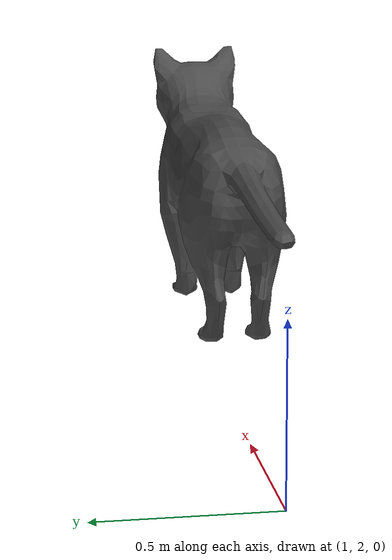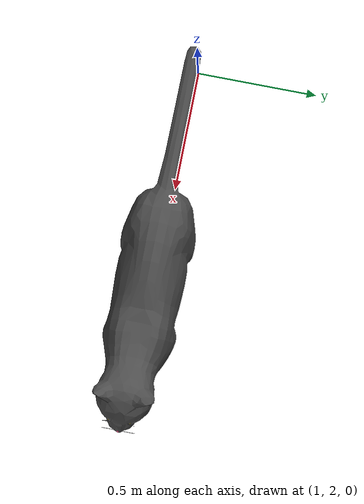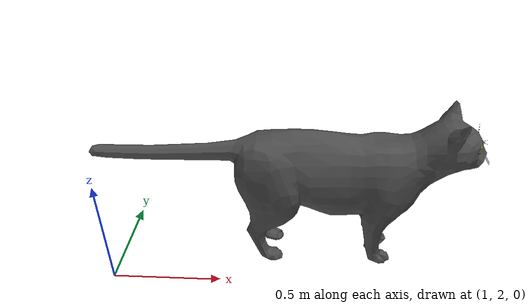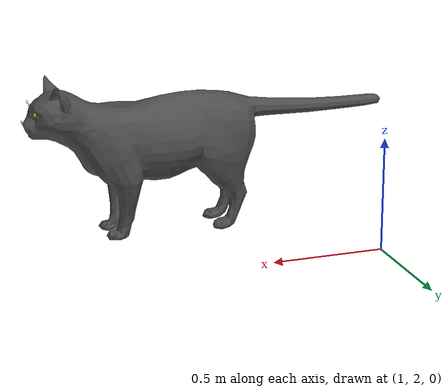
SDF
<sdf version='1.12'>
  <world name='default'>
    <gravity>0 0 -9.800</gravity>
    <magnetic_field>0.000 0.000 -0.000</magnetic_field>
    <atmosphere type='adiabatic'/>
    <physics type='ode'>
      <max_step_size>0.001</max_step_size>
      <real_time_factor>1</real_time_factor>
      <real_time_update_rate>1000</real_time_update_rate>
    </physics>

    <plugin
        filename="gz-sim-physics-system"
        name="gz::sim::systems::Physics">
    </plugin>

    <plugin
        filename="gz-sim-user-commands-system"
        name="gz::sim::systems::UserCommands">
    </plugin>

    <plugin
        filename="gz-sim-scene-broadcaster-system"
        name="gz::sim::systems::SceneBroadcaster">
    </plugin>

    <scene>
      <ambient>0.400 0.400 0.400 1</ambient>
      <background>0.700 0.700 0.700 1</background>
      <shadows>true</shadows>
    </scene>

    <model name="cat">
      <pose>2 2 0 0 0 0</pose>
      <static>false</static>

      <link name="body">
        <pose>0 0 0.2 0 0 0</pose>

        <!-- Main cat body visual -->
        <visual name="visual">
          <geometry>
            <mesh>
              <uri>file:///home/ismail/ros2_ws/src/cat_chaser/meshes/cat.dae</uri>
              <scale>0.2 0.2 0.2</scale>
            </mesh>
          </geometry>
          <pose>0 0 0 1.5708 0 0</pose>
          <material>
            <ambient>0.2 0.2 0.2 1</ambient>    <!-- Lighter gray -->
            <diffuse>0.3 0.3 0.3 1</diffuse>    <!-- Much lighter gray -->
            <specular>0.1 0.1 0.1 1</specular>
          </material>
        </visual>

        <!-- Left Eye -->
        <visual name="left_eye">
          <geometry>
            <sphere>
              <radius>0.015</radius>
            </sphere>
          </geometry>
          <!-- Cat's face is on positive X, eyes should be high up on Z -->
          <pose>0.505 -0.0345 0.564 1.5708 0 0</pose>
          <material>
            <ambient>1.0 0.8 0.0 1</ambient>
            <diffuse>1.0 0.9 0.2 1</diffuse>
            <specular>1.0 1.0 1.0 1</specular>
            <emissive>0.3 0.2 0.0 1</emissive>
          </material>
        </visual>

        <!-- Right Eye -->
        <visual name="right_eye">
          <geometry>
            <sphere>
              <radius>0.015</radius>
            </sphere>
          </geometry>
          <pose>0.505 0.0345 0.564 1.5708 0 0</pose>
          <material>
            <ambient>1.0 0.8 0.0 1</ambient>
            <diffuse>1.0 0.9 0.2 1</diffuse>
            <specular>1.0 1.0 1.0 1</specular>
            <emissive>0.3 0.2 0.0 1</emissive>
          </material>
        </visual>

        <!-- Left Eye Pupil -->
        <visual name="left_pupil">
          <geometry>
            <sphere>
              <radius>0.008</radius>
            </sphere>
          </geometry>
          <pose>0.5133 -0.0345 0.564 1.5708 0 0</pose>
          <material>
            <ambient>0.0 0.0 0.0 1</ambient>
            <diffuse>0.0 0.0 0.0 1</diffuse>
            <specular>0.0 0.0 0.0 1</specular>
          </material>
        </visual>

        <!-- Right Eye Pupil -->
        <visual name="right_pupil">
          <geometry>
            <sphere>
              <radius>0.008</radius>
            </sphere>
          </geometry>
          <pose>0.5133 0.0345 0.564 1.5708 0 0</pose>
          <material>
            <ambient>0.0 0.0 0.0 1</ambient>
            <diffuse>0.0 0.0 0.0 1</diffuse>
            <specular>0.0 0.0 0.0 1</specular>
          </material>
        </visual>

        <!-- Left Whiskers -->
        <visual name="left_whisker_1">
          <geometry>
            <cylinder>
              <radius>0.001</radius>
              <length>0.08</length>
            </cylinder>
          </geometry>
          <pose>0.548 -0.024 0.5123 1.5708 0 0</pose>
          <material>
            <ambient>1.0 1.0 1.0 1</ambient>
            <diffuse>1.0 1.0 1.0 1</diffuse>
            <specular>1.0 1.0 1.0 1</specular>
            <emissive>0.2 0.2 0.2 1</emissive>
          </material>
        </visual>

        <visual name="left_whisker_2">
          <geometry>
            <cylinder>
              <radius>0.001</radius>
              <length>0.08</length>
            </cylinder>
          </geometry>
          <pose>0.548 -0.024 0.505 1.5708 0 0</pose>
          <material>
            <ambient>1.0 1.0 1.0 1</ambient>
            <diffuse>1.0 1.0 1.0 1</diffuse>
            <specular>1.0 1.0 1.0 1</specular>
            <emissive>0.2 0.2 0.2 1</emissive>
          </material>
        </visual>

        <!-- Right Whiskers -->
        <visual name="right_whisker_1">
          <geometry>
            <cylinder>
              <radius>0.001</radius>
              <length>0.08</length>
            </cylinder>
          </geometry>
          <pose>0.548 0.024 0.5123 1.5708 0 0</pose>
          <material>
            <ambient>1.0 1.0 1.0 1</ambient>
            <diffuse>1.0 1.0 1.0 1</diffuse>
            <specular>1.0 1.0 1.0 1</specular>
            <emissive>0.2 0.2 0.2 1</emissive>
          </material>
        </visual>

        <visual name="right_whisker_2">
          <geometry>
            <cylinder>
              <radius>0.001</radius>
              <length>0.08</length>
            </cylinder>
          </geometry>
          <pose>0.548 0.024 0.505 1.5708 0 0</pose>
          <material>
            <ambient>1.0 1.0 1.0 1</ambient>
            <diffuse>1.0 1.0 1.0 1</diffuse>
            <specular>1.0 1.0 1.0 1</specular>
            <emissive>0.2 0.2 0.2 1</emissive>
          </material>
        </visual>

        <!-- Pink Nose -->
        <visual name="nose">
          <geometry>
            <sphere>
              <radius>0.008</radius>
            </sphere>
          </geometry>
          <pose>0.548 0 0.515 1.5708 0 0</pose>
          <material>
            <ambient>1.0 0.2 0.4 1</ambient>
            <diffuse>1.0 0.4 0.6 1</diffuse>
            <specular>0.5 0.5 0.5 1</specular>
            <emissive>0.2 0.05 0.1 1</emissive>
          </material>
        </visual>

        <!-- Collision (same as before) -->
        <collision name="collision">
          <geometry>
            <box>
              <size>0.12 0.06 0.09</size>
            </box>
          </geometry>
          <pose>0 0 0 1.5708 0 0</pose>
        </collision>

        <!-- Inertial properties (same as before) -->
        <inertial>
          <mass>1.0</mass>
          <pose>0 0 0 0 0 0</pose>
          <inertia>
            <ixx>0.01</ixx>
            <ixy>0.0</ixy>
            <ixz>0.0</ixz>
            <iyy>0.02</iyy>
            <iyz>0.0</iyz>
            <izz>0.02</izz>
          </inertia>
        </inertial>
      </link>
    </model>

  </world>
</sdf>
